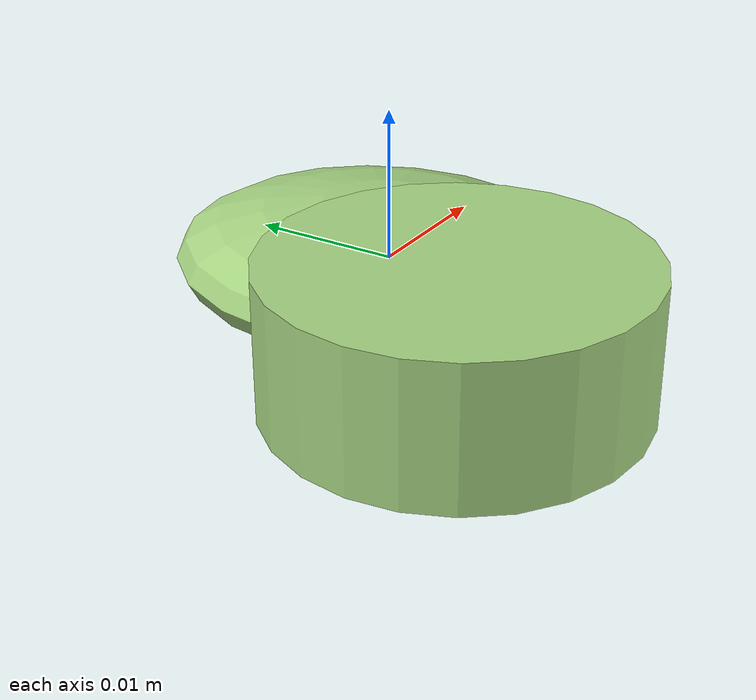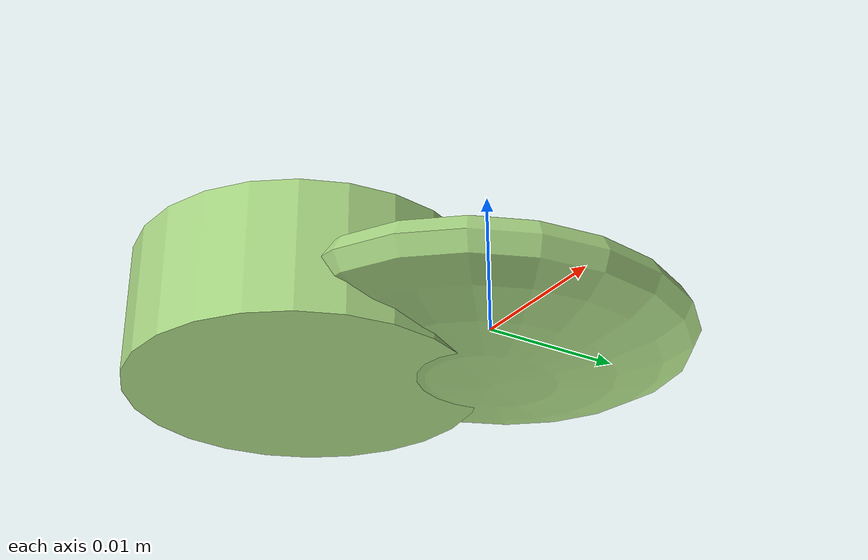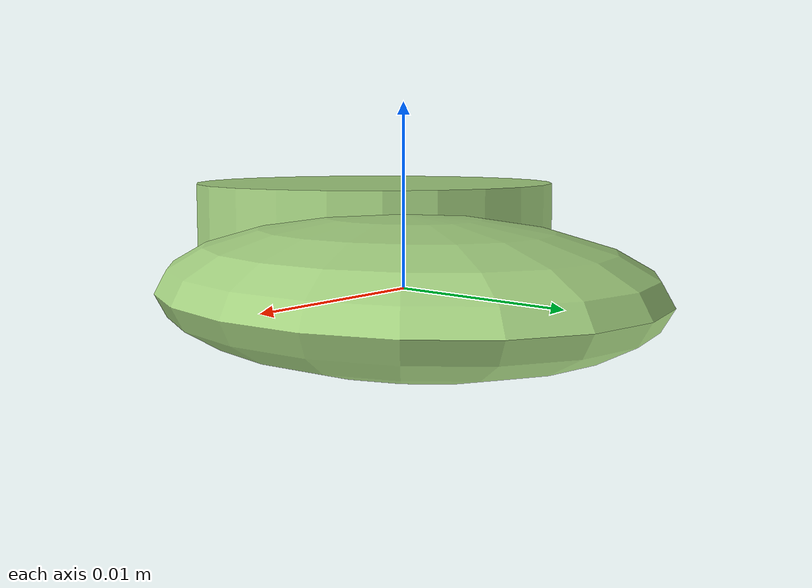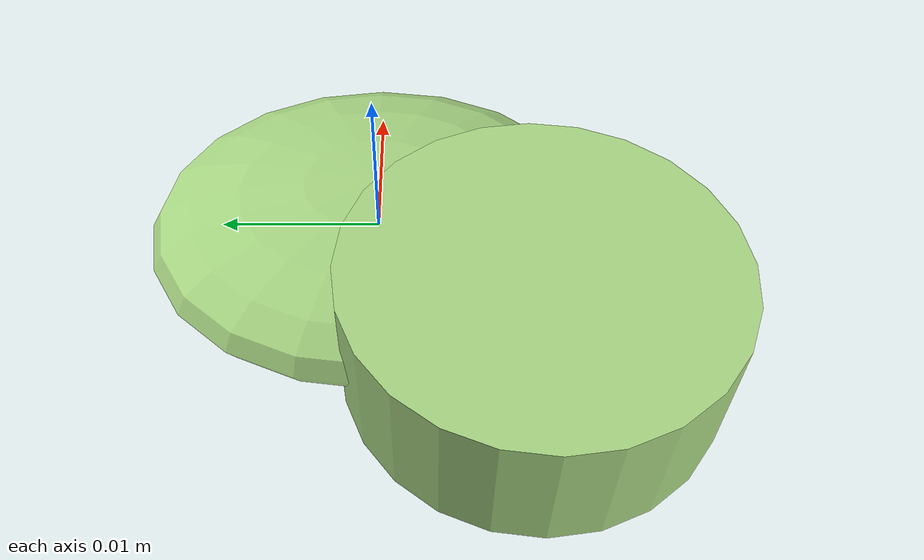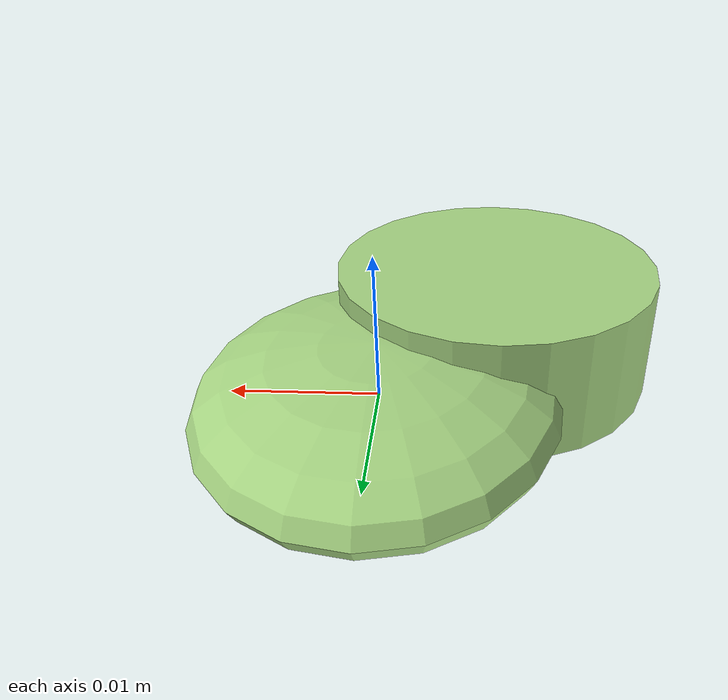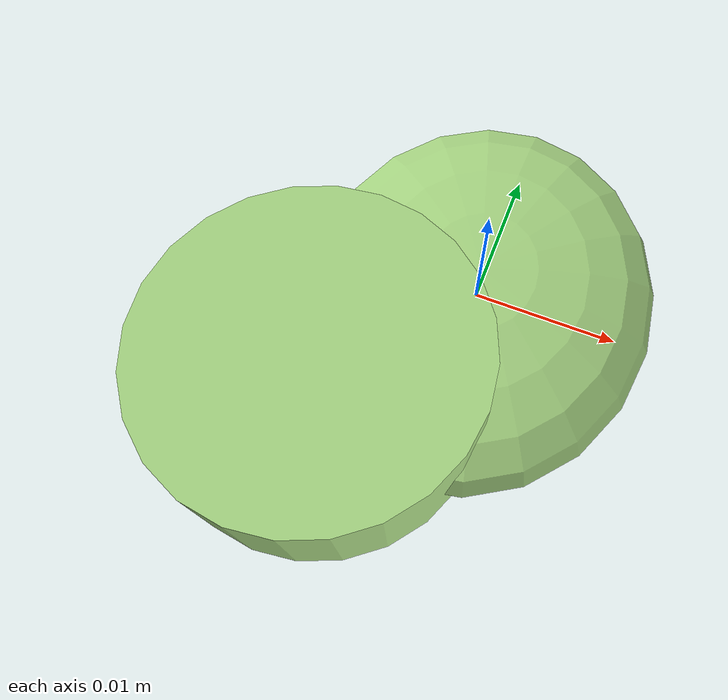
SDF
<?xml version="1.0" ?>
<!-- |    This document was autogenerated by xmacro from data/veggie_template/veggie_base.sdf.xacro  | -->
<!-- |    EDITING THIS FILE BY HAND IS NOT RECOMMENDED                                               | -->
<sdf version="1.8">
	<!-- Parameters -->
	<!-- Base -->
	<!-- Joint 0 -->
	<!-- Link 1 -->
	<!-- Joint 1 -->
	<!-- Link 2 -->
	<!-- Primitives -->
	<!-- All dimensions are half -->
	<!-- Object -->
	<model name="veggie">
		<!-- link0 -->
		<link name="link0">
			<inertial>
				<mass>0.0029843938171706668</mass>
				<inertia>
					<ixx>1.3489300124950633e-07</ixx>
					<ixy>0</ixy>
					<ixz>0</ixz>
					<iyy>1.0033316838861807e-07</iyy>
					<iyz>0</iyz>
					<izz>2.1628210980073188e-07</izz>
				</inertia>
			</inertial>
			<visual name="link0_visual">
				<pose>0 0 0 0 0 0</pose>
				<geometry>
					<ellipsoid>
						<radii>0.012338035725657481 0.014495794257160768 0.00398362516282582</radii>
					</ellipsoid>
				</geometry>
				<material>
					<ambient>0.659 0.839 0.514 1</ambient>
					<diffuse>0.659 0.839 0.514 1</diffuse>
					<specular>0 0 0 0</specular>
					<emissive>0 0 0 1</emissive>
				</material>
			</visual>
			<collision name="link0_collision">
				<pose>0 0 0 0 0 0 </pose>
				<geometry>
					<ellipsoid>
						<radii>0.012338035725657481 0.014495794257160768 0.00398362516282582</radii>
					</ellipsoid>
				</geometry>
			</collision>
		</link>
		<!-- link1 -->
		<joint name="joint0" type="fixed">
			<pose relative_to="link0">-0.007961657568598918 -0.009502319627795646 0.0007655272658233325 0.0 0.0 0.0</pose>
			<parent>link0</parent>
			<child>link1</child>
		</joint>
		<link name="link1">
			<pose relative_to="joint0">0 0 0 0 0 0</pose>
			<inertial>
				<mass>0.0038494025746460864</mass>
				<inertia>
					<ixx>1.5744566548895665e-07</ixx>
					<ixy>0</ixy>
					<ixz>0</ixz>
					<iyy>1.5744566548895665e-07</iyy>
					<iyz>0</iyz>
					<izz>2.6349950733629925e-07</izz>
				</inertia>
			</inertial>
			<visual name="link1_visual">
				<pose>0 0 0 0 0 0</pose>
				<geometry>
					<cylinder>
						<radius>0.011700602766758036</radius>
						<length>0.008950060549190904</length>
					</cylinder>
				</geometry>
				<material>
					<ambient>0.659 0.839 0.514 1</ambient>
					<diffuse>0.659 0.839 0.514 1</diffuse>
					<specular>0 0 0 0</specular>
					<emissive>0 0 0 1</emissive>
				</material>
			</visual>
			<collision name="link1_collision">
				<pose>0 0 0 0 0 0 </pose>
				<geometry>
					<cylinder>
						<radius>0.011700602766758036</radius>
						<length>0.008950060549190904</length>
					</cylinder>
				</geometry>
			</collision>
		</link>
		<!-- link2 -->
	</model>
</sdf>
